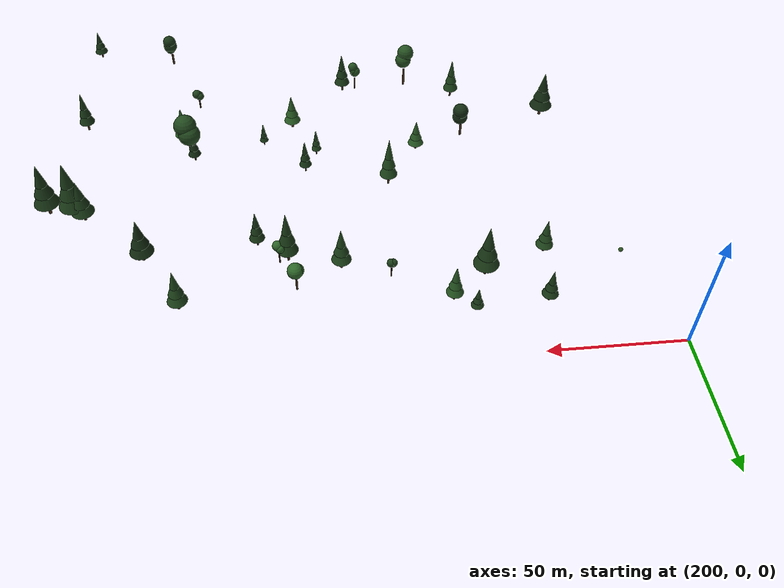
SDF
<sdf version="1.9">
 <world name="detection_world_terrain_train_ir">
  <model name="tree_7">
   <static>true</static>
   <pose>281.96 -144.49 6.29 0 0 3.37</pose>
   <link name="link">
    <visual name="trunk">
     <pose>0 0 3.98 0 0 0</pose>
     <geometry><cylinder><radius>0.44</radius><length>7.96</length></cylinder></geometry>
     <material><ambient>0.28 0.2 0.12 1</ambient><diffuse>0.28 0.2 0.12 1</diffuse></material>
    </visual>
    <visual name="canopy0">
     <pose>0.41 -0.21 16.67 0 0 0</pose>
     <geometry><sphere><radius>3.44</radius></sphere></geometry>
     <material><ambient>0.142 0.315 0.126 1</ambient><diffuse>0.142 0.315 0.126 1</diffuse></material>
    </visual>
    <visual name="canopy1">
     <pose>0.20 -0.24 13.62 0 0 0</pose>
     <geometry><sphere><radius>2.53</radius></sphere></geometry>
     <material><ambient>0.142 0.315 0.126 1</ambient><diffuse>0.142 0.315 0.126 1</diffuse></material>
    </visual>
    <visual name="canopy2">
     <pose>-0.77 -0.86 13.71 0 0 0</pose>
     <geometry><sphere><radius>3.29</radius></sphere></geometry>
     <material><ambient>0.142 0.315 0.126 1</ambient><diffuse>0.142 0.315 0.126 1</diffuse></material>
    </visual>
   </link>
  </model>
  <model name="tree_9">
   <static>true</static>
   <pose>317.36 -36.46 9.45 0 0 6.08</pose>
   <link name="link">
    <visual name="trunk">
     <pose>0 0 3.11 0 0 0</pose>
     <geometry><cylinder><radius>0.43</radius><length>6.21</length></cylinder></geometry>
     <material><ambient>0.28 0.2 0.12 1</ambient><diffuse>0.28 0.2 0.12 1</diffuse></material>
    </visual>
    <visual name="canopy0">
     <pose>0 0 7.99 0 0 0</pose>
     <geometry><cone><radius>3.57</radius><length>7.46</length></cone></geometry>
     <material><ambient>0.129 0.287 0.115 1</ambient><diffuse>0.129 0.287 0.115 1</diffuse></material>
    </visual>
    <visual name="canopy1">
     <pose>0 0 11.54 0 0 0</pose>
     <geometry><cone><radius>2.68</radius><length>7.46</length></cone></geometry>
     <material><ambient>0.129 0.287 0.115 1</ambient><diffuse>0.129 0.287 0.115 1</diffuse></material>
    </visual>
    <visual name="canopy2">
     <pose>0 0 15.09 0 0 0</pose>
     <geometry><cone><radius>1.61</radius><length>7.46</length></cone></geometry>
     <material><ambient>0.129 0.287 0.115 1</ambient><diffuse>0.129 0.287 0.115 1</diffuse></material>
    </visual>
   </link>
  </model>
  <model name="tree_10">
   <static>true</static>
   <pose>370.35 -92.12 15.42 0 0 4.68</pose>
   <link name="link">
    <visual name="trunk">
     <pose>0 0 2.21 0 0 0</pose>
     <geometry><cylinder><radius>0.29</radius><length>4.43</length></cylinder></geometry>
     <material><ambient>0.28 0.2 0.12 1</ambient><diffuse>0.28 0.2 0.12 1</diffuse></material>
    </visual>
    <visual name="canopy0">
     <pose>0 0 5.69 0 0 0</pose>
     <geometry><cone><radius>2.39</radius><length>5.31</length></cone></geometry>
     <material><ambient>0.084 0.187 0.075 1</ambient><diffuse>0.084 0.187 0.075 1</diffuse></material>
    </visual>
    <visual name="canopy1">
     <pose>0 0 8.22 0 0 0</pose>
     <geometry><cone><radius>1.79</radius><length>5.31</length></cone></geometry>
     <material><ambient>0.084 0.187 0.075 1</ambient><diffuse>0.084 0.187 0.075 1</diffuse></material>
    </visual>
    <visual name="canopy2">
     <pose>0 0 10.75 0 0 0</pose>
     <geometry><cone><radius>1.08</radius><length>5.31</length></cone></geometry>
     <material><ambient>0.084 0.187 0.075 1</ambient><diffuse>0.084 0.187 0.075 1</diffuse></material>
    </visual>
   </link>
  </model>
  <model name="tree_11">
   <static>true</static>
   <pose>333.58 -26.29 11.20 0 0 4.42</pose>
   <link name="link">
    <visual name="trunk">
     <pose>0 0 2.56 0 0 0</pose>
     <geometry><cylinder><radius>0.36</radius><length>5.11</length></cylinder></geometry>
     <material><ambient>0.28 0.2 0.12 1</ambient><diffuse>0.28 0.2 0.12 1</diffuse></material>
    </visual>
    <visual name="canopy0">
     <pose>0.10 0.20 9.37 0 0 0</pose>
     <geometry><sphere><radius>2.86</radius></sphere></geometry>
     <material><ambient>0.181 0.403 0.161 1</ambient><diffuse>0.181 0.403 0.161 1</diffuse></material>
    </visual>
    <visual name="canopy1">
     <pose>0.46 -0.36 9.33 0 0 0</pose>
     <geometry><sphere><radius>2.43</radius></sphere></geometry>
     <material><ambient>0.181 0.403 0.161 1</ambient><diffuse>0.181 0.403 0.161 1</diffuse></material>
    </visual>
    <visual name="canopy2">
     <pose>0.03 0.04 8.73 0 0 0</pose>
     <geometry><sphere><radius>2.41</radius></sphere></geometry>
     <material><ambient>0.181 0.403 0.161 1</ambient><diffuse>0.181 0.403 0.161 1</diffuse></material>
    </visual>
   </link>
  </model>
  <model name="tree_12">
   <static>true</static>
   <pose>373.00 -17.21 16.43 0 0 0.08</pose>
   <link name="link">
    <visual name="trunk">
     <pose>0 0 2.99 0 0 0</pose>
     <geometry><cylinder><radius>0.42</radius><length>5.97</length></cylinder></geometry>
     <material><ambient>0.28 0.2 0.12 1</ambient><diffuse>0.28 0.2 0.12 1</diffuse></material>
    </visual>
    <visual name="canopy0">
     <pose>0 0 7.68 0 0 0</pose>
     <geometry><cone><radius>3.46</radius><length>7.17</length></cone></geometry>
     <material><ambient>0.132 0.294 0.118 1</ambient><diffuse>0.132 0.294 0.118 1</diffuse></material>
    </visual>
    <visual name="canopy1">
     <pose>0 0 11.09 0 0 0</pose>
     <geometry><cone><radius>2.60</radius><length>7.17</length></cone></geometry>
     <material><ambient>0.132 0.294 0.118 1</ambient><diffuse>0.132 0.294 0.118 1</diffuse></material>
    </visual>
    <visual name="canopy2">
     <pose>0 0 14.50 0 0 0</pose>
     <geometry><cone><radius>1.56</radius><length>7.17</length></cone></geometry>
     <material><ambient>0.132 0.294 0.118 1</ambient><diffuse>0.132 0.294 0.118 1</diffuse></material>
    </visual>
   </link>
  </model>
  <model name="tree_14">
   <static>true</static>
   <pose>371.86 -94.50 15.38 0 0 2.13</pose>
   <link name="link">
    <visual name="trunk">
     <pose>0 0 3.83 0 0 0</pose>
     <geometry><cylinder><radius>0.59</radius><length>7.67</length></cylinder></geometry>
     <material><ambient>0.28 0.2 0.12 1</ambient><diffuse>0.28 0.2 0.12 1</diffuse></material>
    </visual>
    <visual name="canopy0">
     <pose>-1.30 0.12 13.08 0 0 0</pose>
     <geometry><sphere><radius>3.86</radius></sphere></geometry>
     <material><ambient>0.127 0.283 0.113 1</ambient><diffuse>0.127 0.283 0.113 1</diffuse></material>
    </visual>
    <visual name="canopy1">
     <pose>-0.68 -0.45 15.03 0 0 0</pose>
     <geometry><sphere><radius>4.34</radius></sphere></geometry>
     <material><ambient>0.127 0.283 0.113 1</ambient><diffuse>0.127 0.283 0.113 1</diffuse></material>
    </visual>
    <visual name="canopy2">
     <pose>1.40 -0.28 12.09 0 0 0</pose>
     <geometry><sphere><radius>4.22</radius></sphere></geometry>
     <material><ambient>0.127 0.283 0.113 1</ambient><diffuse>0.127 0.283 0.113 1</diffuse></material>
    </visual>
   </link>
  </model>
  <model name="tree_16">
   <static>true</static>
   <pose>327.68 -87.29 10.52 0 0 4.28</pose>
   <link name="link">
    <visual name="trunk">
     <pose>0 0 2.44 0 0 0</pose>
     <geometry><cylinder><radius>0.28</radius><length>4.89</length></cylinder></geometry>
     <material><ambient>0.28 0.2 0.12 1</ambient><diffuse>0.28 0.2 0.12 1</diffuse></material>
    </visual>
    <visual name="canopy0">
     <pose>0 0 6.28 0 0 0</pose>
     <geometry><cone><radius>2.37</radius><length>5.87</length></cone></geometry>
     <material><ambient>0.108 0.240 0.096 1</ambient><diffuse>0.108 0.240 0.096 1</diffuse></material>
    </visual>
    <visual name="canopy1">
     <pose>0 0 9.08 0 0 0</pose>
     <geometry><cone><radius>1.78</radius><length>5.87</length></cone></geometry>
     <material><ambient>0.108 0.240 0.096 1</ambient><diffuse>0.108 0.240 0.096 1</diffuse></material>
    </visual>
    <visual name="canopy2">
     <pose>0 0 11.87 0 0 0</pose>
     <geometry><cone><radius>1.07</radius><length>5.87</length></cone></geometry>
     <material><ambient>0.108 0.240 0.096 1</ambient><diffuse>0.108 0.240 0.096 1</diffuse></material>
    </visual>
   </link>
  </model>
  <model name="tree_17">
   <static>true</static>
   <pose>282.10 -101.90 5.74 0 0 0.95</pose>
   <link name="link">
    <visual name="trunk">
     <pose>0 0 2.27 0 0 0</pose>
     <geometry><cylinder><radius>0.37</radius><length>4.55</length></cylinder></geometry>
     <material><ambient>0.28 0.2 0.12 1</ambient><diffuse>0.28 0.2 0.12 1</diffuse></material>
    </visual>
    <visual name="canopy0">
     <pose>0 0 5.85 0 0 0</pose>
     <geometry><cone><radius>3.10</radius><length>5.46</length></cone></geometry>
     <material><ambient>0.166 0.369 0.148 1</ambient><diffuse>0.166 0.369 0.148 1</diffuse></material>
    </visual>
    <visual name="canopy1">
     <pose>0 0 8.44 0 0 0</pose>
     <geometry><cone><radius>2.33</radius><length>5.46</length></cone></geometry>
     <material><ambient>0.166 0.369 0.148 1</ambient><diffuse>0.166 0.369 0.148 1</diffuse></material>
    </visual>
    <visual name="canopy2">
     <pose>0 0 11.04 0 0 0</pose>
     <geometry><cone><radius>1.40</radius><length>5.46</length></cone></geometry>
     <material><ambient>0.166 0.369 0.148 1</ambient><diffuse>0.166 0.369 0.148 1</diffuse></material>
    </visual>
   </link>
  </model>
  <model name="tree_18">
   <static>true</static>
   <pose>278.76 -21.80 5.20 0 0 0.97</pose>
   <link name="link">
    <visual name="trunk">
     <pose>0 0 2.70 0 0 0</pose>
     <geometry><cylinder><radius>0.37</radius><length>5.40</length></cylinder></geometry>
     <material><ambient>0.28 0.2 0.12 1</ambient><diffuse>0.28 0.2 0.12 1</diffuse></material>
    </visual>
    <visual name="canopy0">
     <pose>0 0 6.95 0 0 0</pose>
     <geometry><cone><radius>3.12</radius><length>6.48</length></cone></geometry>
     <material><ambient>0.163 0.362 0.145 1</ambient><diffuse>0.163 0.362 0.145 1</diffuse></material>
    </visual>
    <visual name="canopy1">
     <pose>0 0 10.03 0 0 0</pose>
     <geometry><cone><radius>2.34</radius><length>6.48</length></cone></geometry>
     <material><ambient>0.163 0.362 0.145 1</ambient><diffuse>0.163 0.362 0.145 1</diffuse></material>
    </visual>
    <visual name="canopy2">
     <pose>0 0 13.12 0 0 0</pose>
     <geometry><cone><radius>1.40</radius><length>6.48</length></cone></geometry>
     <material><ambient>0.163 0.362 0.145 1</ambient><diffuse>0.163 0.362 0.145 1</diffuse></material>
    </visual>
   </link>
  </model>
  <model name="tree_19">
   <static>true</static>
   <pose>331.84 -114.08 10.98 0 0 6.01</pose>
   <link name="link">
    <visual name="trunk">
     <pose>0 0 2.53 0 0 0</pose>
     <geometry><cylinder><radius>0.39</radius><length>5.05</length></cylinder></geometry>
     <material><ambient>0.28 0.2 0.12 1</ambient><diffuse>0.28 0.2 0.12 1</diffuse></material>
    </visual>
    <visual name="canopy0">
     <pose>0 0 6.50 0 0 0</pose>
     <geometry><cone><radius>3.24</radius><length>6.06</length></cone></geometry>
     <material><ambient>0.176 0.391 0.157 1</ambient><diffuse>0.176 0.391 0.157 1</diffuse></material>
    </visual>
    <visual name="canopy1">
     <pose>0 0 9.39 0 0 0</pose>
     <geometry><cone><radius>2.43</radius><length>6.06</length></cone></geometry>
     <material><ambient>0.176 0.391 0.157 1</ambient><diffuse>0.176 0.391 0.157 1</diffuse></material>
    </visual>
    <visual name="canopy2">
     <pose>0 0 12.27 0 0 0</pose>
     <geometry><cone><radius>1.46</radius><length>6.06</length></cone></geometry>
     <material><ambient>0.176 0.391 0.157 1</ambient><diffuse>0.176 0.391 0.157 1</diffuse></material>
    </visual>
   </link>
  </model>
  <model name="tree_28">
   <static>true</static>
   <pose>265.55 -33.37 4.22 0 0 5.97</pose>
   <link name="link">
    <visual name="trunk">
     <pose>0 0 3.84 0 0 0</pose>
     <geometry><cylinder><radius>0.57</radius><length>7.67</length></cylinder></geometry>
     <material><ambient>0.28 0.2 0.12 1</ambient><diffuse>0.28 0.2 0.12 1</diffuse></material>
    </visual>
    <visual name="canopy0">
     <pose>0 0 9.87 0 0 0</pose>
     <geometry><cone><radius>4.72</radius><length>9.21</length></cone></geometry>
     <material><ambient>0.107 0.237 0.095 1</ambient><diffuse>0.107 0.237 0.095 1</diffuse></material>
    </visual>
    <visual name="canopy1">
     <pose>0 0 14.25 0 0 0</pose>
     <geometry><cone><radius>3.54</radius><length>9.21</length></cone></geometry>
     <material><ambient>0.107 0.237 0.095 1</ambient><diffuse>0.107 0.237 0.095 1</diffuse></material>
    </visual>
    <visual name="canopy2">
     <pose>0 0 18.64 0 0 0</pose>
     <geometry><cone><radius>2.13</radius><length>9.21</length></cone></geometry>
     <material><ambient>0.107 0.237 0.095 1</ambient><diffuse>0.107 0.237 0.095 1</diffuse></material>
    </visual>
   </link>
  </model>
  <model name="tree_30">
   <static>true</static>
   <pose>411.90 -107.45 21.19 0 0 0.23</pose>
   <link name="link">
    <visual name="trunk">
     <pose>0 0 2.91 0 0 0</pose>
     <geometry><cylinder><radius>0.35</radius><length>5.81</length></cylinder></geometry>
     <material><ambient>0.28 0.2 0.12 1</ambient><diffuse>0.28 0.2 0.12 1</diffuse></material>
    </visual>
    <visual name="canopy0">
     <pose>0 0 7.47 0 0 0</pose>
     <geometry><cone><radius>2.92</radius><length>6.98</length></cone></geometry>
     <material><ambient>0.109 0.242 0.097 1</ambient><diffuse>0.109 0.242 0.097 1</diffuse></material>
    </visual>
    <visual name="canopy1">
     <pose>0 0 10.80 0 0 0</pose>
     <geometry><cone><radius>2.19</radius><length>6.98</length></cone></geometry>
     <material><ambient>0.109 0.242 0.097 1</ambient><diffuse>0.109 0.242 0.097 1</diffuse></material>
    </visual>
    <visual name="canopy2">
     <pose>0 0 14.12 0 0 0</pose>
     <geometry><cone><radius>1.31</radius><length>6.98</length></cone></geometry>
     <material><ambient>0.109 0.242 0.097 1</ambient><diffuse>0.109 0.242 0.097 1</diffuse></material>
    </visual>
   </link>
  </model>
  <model name="tree_31">
   <static>true</static>
   <pose>244.88 -20.02 3.01 0 0 1.96</pose>
   <link name="link">
    <visual name="trunk">
     <pose>0 0 2.48 0 0 0</pose>
     <geometry><cylinder><radius>0.35</radius><length>4.95</length></cylinder></geometry>
     <material><ambient>0.28 0.2 0.12 1</ambient><diffuse>0.28 0.2 0.12 1</diffuse></material>
    </visual>
    <visual name="canopy0">
     <pose>0 0 6.37 0 0 0</pose>
     <geometry><cone><radius>2.96</radius><length>5.94</length></cone></geometry>
     <material><ambient>0.109 0.242 0.097 1</ambient><diffuse>0.109 0.242 0.097 1</diffuse></material>
    </visual>
    <visual name="canopy1">
     <pose>0 0 9.20 0 0 0</pose>
     <geometry><cone><radius>2.22</radius><length>5.94</length></cone></geometry>
     <material><ambient>0.109 0.242 0.097 1</ambient><diffuse>0.109 0.242 0.097 1</diffuse></material>
    </visual>
    <visual name="canopy2">
     <pose>0 0 12.03 0 0 0</pose>
     <geometry><cone><radius>1.33</radius><length>5.94</length></cone></geometry>
     <material><ambient>0.109 0.242 0.097 1</ambient><diffuse>0.109 0.242 0.097 1</diffuse></material>
    </visual>
   </link>
  </model>
  <model name="tree_32">
   <static>true</static>
   <pose>295.68 -80.49 7.30 0 0 3.36</pose>
   <link name="link">
    <visual name="trunk">
     <pose>0 0 3.65 0 0 0</pose>
     <geometry><cylinder><radius>0.41</radius><length>7.31</length></cylinder></geometry>
     <material><ambient>0.28 0.2 0.12 1</ambient><diffuse>0.28 0.2 0.12 1</diffuse></material>
    </visual>
    <visual name="canopy0">
     <pose>0 0 9.39 0 0 0</pose>
     <geometry><cone><radius>3.39</radius><length>8.77</length></cone></geometry>
     <material><ambient>0.139 0.309 0.124 1</ambient><diffuse>0.139 0.309 0.124 1</diffuse></material>
    </visual>
    <visual name="canopy1">
     <pose>0 0 13.57 0 0 0</pose>
     <geometry><cone><radius>2.54</radius><length>8.77</length></cone></geometry>
     <material><ambient>0.139 0.309 0.124 1</ambient><diffuse>0.139 0.309 0.124 1</diffuse></material>
    </visual>
    <visual name="canopy2">
     <pose>0 0 17.74 0 0 0</pose>
     <geometry><cone><radius>1.53</radius><length>8.77</length></cone></geometry>
     <material><ambient>0.139 0.309 0.124 1</ambient><diffuse>0.139 0.309 0.124 1</diffuse></material>
    </visual>
   </link>
  </model>
  <model name="tree_34">
   <static>true</static>
   <pose>241.52 -43.54 2.79 0 0 6.15</pose>
   <link name="link">
    <visual name="trunk">
     <pose>0 0 2.56 0 0 0</pose>
     <geometry><cylinder><radius>0.39</radius><length>5.11</length></cylinder></geometry>
     <material><ambient>0.28 0.2 0.12 1</ambient><diffuse>0.28 0.2 0.12 1</diffuse></material>
    </visual>
    <visual name="canopy0">
     <pose>0 0 6.57 0 0 0</pose>
     <geometry><cone><radius>3.22</radius><length>6.14</length></cone></geometry>
     <material><ambient>0.134 0.298 0.119 1</ambient><diffuse>0.134 0.298 0.119 1</diffuse></material>
    </visual>
    <visual name="canopy1">
     <pose>0 0 9.50 0 0 0</pose>
     <geometry><cone><radius>2.42</radius><length>6.14</length></cone></geometry>
     <material><ambient>0.134 0.298 0.119 1</ambient><diffuse>0.134 0.298 0.119 1</diffuse></material>
    </visual>
    <visual name="canopy2">
     <pose>0 0 12.42 0 0 0</pose>
     <geometry><cone><radius>1.45</radius><length>6.14</length></cone></geometry>
     <material><ambient>0.134 0.298 0.119 1</ambient><diffuse>0.134 0.298 0.119 1</diffuse></material>
    </visual>
   </link>
  </model>
  <model name="tree_36">
   <static>true</static>
   <pose>411.76 -156.10 21.31 0 0 1.24</pose>
   <link name="link">
    <visual name="trunk">
     <pose>0 0 2.02 0 0 0</pose>
     <geometry><cylinder><radius>0.30</radius><length>4.04</length></cylinder></geometry>
     <material><ambient>0.28 0.2 0.12 1</ambient><diffuse>0.28 0.2 0.12 1</diffuse></material>
    </visual>
    <visual name="canopy0">
     <pose>0 0 5.19 0 0 0</pose>
     <geometry><cone><radius>2.53</radius><length>4.84</length></cone></geometry>
     <material><ambient>0.097 0.214 0.086 1</ambient><diffuse>0.097 0.214 0.086 1</diffuse></material>
    </visual>
    <visual name="canopy1">
     <pose>0 0 7.50 0 0 0</pose>
     <geometry><cone><radius>1.90</radius><length>4.84</length></cone></geometry>
     <material><ambient>0.097 0.214 0.086 1</ambient><diffuse>0.097 0.214 0.086 1</diffuse></material>
    </visual>
    <visual name="canopy2">
     <pose>0 0 9.80 0 0 0</pose>
     <geometry><cone><radius>1.14</radius><length>4.84</length></cone></geometry>
     <material><ambient>0.097 0.214 0.086 1</ambient><diffuse>0.097 0.214 0.086 1</diffuse></material>
    </visual>
   </link>
  </model>
  <model name="tree_37">
   <static>true</static>
   <pose>381.76 -153.99 17.22 0 0 2.03</pose>
   <link name="link">
    <visual name="trunk">
     <pose>0 0 2.41 0 0 0</pose>
     <geometry><cylinder><radius>0.40</radius><length>4.81</length></cylinder></geometry>
     <material><ambient>0.28 0.2 0.12 1</ambient><diffuse>0.28 0.2 0.12 1</diffuse></material>
    </visual>
    <visual name="canopy0">
     <pose>-0.80 -0.05 8.63 0 0 0</pose>
     <geometry><sphere><radius>2.72</radius></sphere></geometry>
     <material><ambient>0.092 0.205 0.082 1</ambient><diffuse>0.092 0.205 0.082 1</diffuse></material>
    </visual>
    <visual name="canopy1">
     <pose>-0.39 -0.33 7.62 0 0 0</pose>
     <geometry><sphere><radius>2.08</radius></sphere></geometry>
     <material><ambient>0.092 0.205 0.082 1</ambient><diffuse>0.092 0.205 0.082 1</diffuse></material>
    </visual>
    <visual name="canopy2">
     <pose>-0.98 -0.08 10.58 0 0 0</pose>
     <geometry><sphere><radius>2.60</radius></sphere></geometry>
     <material><ambient>0.092 0.205 0.082 1</ambient><diffuse>0.092 0.205 0.082 1</diffuse></material>
    </visual>
   </link>
  </model>
  <model name="tree_39">
   <static>true</static>
   <pose>303.89 -140.99 8.26 0 0 4.96</pose>
   <link name="link">
    <visual name="trunk">
     <pose>0 0 2.68 0 0 0</pose>
     <geometry><cylinder><radius>0.30</radius><length>5.37</length></cylinder></geometry>
     <material><ambient>0.28 0.2 0.12 1</ambient><diffuse>0.28 0.2 0.12 1</diffuse></material>
    </visual>
    <visual name="canopy0">
     <pose>-0.13 0.40 9.44 0 0 0</pose>
     <geometry><sphere><radius>1.72</radius></sphere></geometry>
     <material><ambient>0.137 0.304 0.121 1</ambient><diffuse>0.137 0.304 0.121 1</diffuse></material>
    </visual>
    <visual name="canopy1">
     <pose>0.00 -0.14 8.93 0 0 0</pose>
     <geometry><sphere><radius>2.16</radius></sphere></geometry>
     <material><ambient>0.137 0.304 0.121 1</ambient><diffuse>0.137 0.304 0.121 1</diffuse></material>
    </visual>
    <visual name="canopy2">
     <pose>0.55 0.50 10.96 0 0 0</pose>
     <geometry><sphere><radius>1.93</radius></sphere></geometry>
     <material><ambient>0.137 0.304 0.121 1</ambient><diffuse>0.137 0.304 0.121 1</diffuse></material>
    </visual>
   </link>
  </model>
  <model name="tree_40">
   <static>true</static>
   <pose>262.20 -136.35 4.75 0 0 5.10</pose>
   <link name="link">
    <visual name="trunk">
     <pose>0 0 3.05 0 0 0</pose>
     <geometry><cylinder><radius>0.37</radius><length>6.10</length></cylinder></geometry>
     <material><ambient>0.28 0.2 0.12 1</ambient><diffuse>0.28 0.2 0.12 1</diffuse></material>
    </visual>
    <visual name="canopy0">
     <pose>0 0 7.84 0 0 0</pose>
     <geometry><cone><radius>3.08</radius><length>7.32</length></cone></geometry>
     <material><ambient>0.128 0.285 0.114 1</ambient><diffuse>0.128 0.285 0.114 1</diffuse></material>
    </visual>
    <visual name="canopy1">
     <pose>0 0 11.33 0 0 0</pose>
     <geometry><cone><radius>2.31</radius><length>7.32</length></cone></geometry>
     <material><ambient>0.128 0.285 0.114 1</ambient><diffuse>0.128 0.285 0.114 1</diffuse></material>
    </visual>
    <visual name="canopy2">
     <pose>0 0 14.81 0 0 0</pose>
     <geometry><cone><radius>1.39</radius><length>7.32</length></cone></geometry>
     <material><ambient>0.128 0.285 0.114 1</ambient><diffuse>0.128 0.285 0.114 1</diffuse></material>
    </visual>
   </link>
  </model>
  <model name="tree_41">
   <static>true</static>
   <pose>343.53 -102.35 12.22 0 0 4.47</pose>
   <link name="link">
    <visual name="trunk">
     <pose>0 0 1.76 0 0 0</pose>
     <geometry><cylinder><radius>0.20</radius><length>3.53</length></cylinder></geometry>
     <material><ambient>0.28 0.2 0.12 1</ambient><diffuse>0.28 0.2 0.12 1</diffuse></material>
    </visual>
    <visual name="canopy0">
     <pose>0 0 4.54 0 0 0</pose>
     <geometry><cone><radius>1.65</radius><length>4.23</length></cone></geometry>
     <material><ambient>0.109 0.243 0.097 1</ambient><diffuse>0.109 0.243 0.097 1</diffuse></material>
    </visual>
    <visual name="canopy1">
     <pose>0 0 6.55 0 0 0</pose>
     <geometry><cone><radius>1.24</radius><length>4.23</length></cone></geometry>
     <material><ambient>0.109 0.243 0.097 1</ambient><diffuse>0.109 0.243 0.097 1</diffuse></material>
    </visual>
    <visual name="canopy2">
     <pose>0 0 8.57 0 0 0</pose>
     <geometry><cone><radius>0.74</radius><length>4.23</length></cone></geometry>
     <material><ambient>0.109 0.243 0.097 1</ambient><diffuse>0.109 0.243 0.097 1</diffuse></material>
    </visual>
   </link>
  </model>
  <model name="tree_42">
   <static>true</static>
   <pose>385.89 -38.65 18.24 0 0 3.95</pose>
   <link name="link">
    <visual name="trunk">
     <pose>0 0 3.12 0 0 0</pose>
     <geometry><cylinder><radius>0.50</radius><length>6.24</length></cylinder></geometry>
     <material><ambient>0.28 0.2 0.12 1</ambient><diffuse>0.28 0.2 0.12 1</diffuse></material>
    </visual>
    <visual name="canopy0">
     <pose>0 0 8.03 0 0 0</pose>
     <geometry><cone><radius>4.21</radius><length>7.49</length></cone></geometry>
     <material><ambient>0.083 0.184 0.073 1</ambient><diffuse>0.083 0.184 0.073 1</diffuse></material>
    </visual>
    <visual name="canopy1">
     <pose>0 0 11.59 0 0 0</pose>
     <geometry><cone><radius>3.16</radius><length>7.49</length></cone></geometry>
     <material><ambient>0.083 0.184 0.073 1</ambient><diffuse>0.083 0.184 0.073 1</diffuse></material>
    </visual>
    <visual name="canopy2">
     <pose>0 0 15.16 0 0 0</pose>
     <geometry><cone><radius>1.89</radius><length>7.49</length></cone></geometry>
     <material><ambient>0.083 0.184 0.073 1</ambient><diffuse>0.083 0.184 0.073 1</diffuse></material>
    </visual>
   </link>
  </model>
  <model name="tree_43">
   <static>true</static>
   <pose>419.62 -59.90 23.00 0 0 4.94</pose>
   <link name="link">
    <visual name="trunk">
     <pose>0 0 3.74 0 0 0</pose>
     <geometry><cylinder><radius>0.55</radius><length>7.47</length></cylinder></geometry>
     <material><ambient>0.28 0.2 0.12 1</ambient><diffuse>0.28 0.2 0.12 1</diffuse></material>
    </visual>
    <visual name="canopy0">
     <pose>0 0 9.61 0 0 0</pose>
     <geometry><cone><radius>4.55</radius><length>8.97</length></cone></geometry>
     <material><ambient>0.100 0.221 0.089 1</ambient><diffuse>0.100 0.221 0.089 1</diffuse></material>
    </visual>
    <visual name="canopy1">
     <pose>0 0 13.88 0 0 0</pose>
     <geometry><cone><radius>3.42</radius><length>8.97</length></cone></geometry>
     <material><ambient>0.100 0.221 0.089 1</ambient><diffuse>0.100 0.221 0.089 1</diffuse></material>
    </visual>
    <visual name="canopy2">
     <pose>0 0 18.15 0 0 0</pose>
     <geometry><cone><radius>2.05</radius><length>8.97</length></cone></geometry>
     <material><ambient>0.100 0.221 0.089 1</ambient><diffuse>0.100 0.221 0.089 1</diffuse></material>
    </visual>
   </link>
  </model>
  <model name="tree_45">
   <static>true</static>
   <pose>224.77 -123.22 2.44 0 0 0.05</pose>
   <link name="link">
    <visual name="trunk">
     <pose>0 0 3.51 0 0 0</pose>
     <geometry><cylinder><radius>0.56</radius><length>7.02</length></cylinder></geometry>
     <material><ambient>0.28 0.2 0.12 1</ambient><diffuse>0.28 0.2 0.12 1</diffuse></material>
    </visual>
    <visual name="canopy0">
     <pose>0 0 9.03 0 0 0</pose>
     <geometry><cone><radius>4.68</radius><length>8.43</length></cone></geometry>
     <material><ambient>0.082 0.182 0.073 1</ambient><diffuse>0.082 0.182 0.073 1</diffuse></material>
    </visual>
    <visual name="canopy1">
     <pose>0 0 13.04 0 0 0</pose>
     <geometry><cone><radius>3.51</radius><length>8.43</length></cone></geometry>
     <material><ambient>0.082 0.182 0.073 1</ambient><diffuse>0.082 0.182 0.073 1</diffuse></material>
    </visual>
    <visual name="canopy2">
     <pose>0 0 17.05 0 0 0</pose>
     <geometry><cone><radius>2.11</radius><length>8.43</length></cone></geometry>
     <material><ambient>0.082 0.182 0.073 1</ambient><diffuse>0.082 0.182 0.073 1</diffuse></material>
    </visual>
   </link>
  </model>
  <model name="tree_47">
   <static>true</static>
   <pose>410.52 -58.78 21.58 0 0 4.58</pose>
   <link name="link">
    <visual name="trunk">
     <pose>0 0 4.11 0 0 0</pose>
     <geometry><cylinder><radius>0.61</radius><length>8.21</length></cylinder></geometry>
     <material><ambient>0.28 0.2 0.12 1</ambient><diffuse>0.28 0.2 0.12 1</diffuse></material>
    </visual>
    <visual name="canopy0">
     <pose>0 0 10.56 0 0 0</pose>
     <geometry><cone><radius>5.07</radius><length>9.86</length></cone></geometry>
     <material><ambient>0.109 0.243 0.097 1</ambient><diffuse>0.109 0.243 0.097 1</diffuse></material>
    </visual>
    <visual name="canopy1">
     <pose>0 0 15.26 0 0 0</pose>
     <geometry><cone><radius>3.80</radius><length>9.86</length></cone></geometry>
     <material><ambient>0.109 0.243 0.097 1</ambient><diffuse>0.109 0.243 0.097 1</diffuse></material>
    </visual>
    <visual name="canopy2">
     <pose>0 0 19.95 0 0 0</pose>
     <geometry><cone><radius>2.28</radius><length>9.86</length></cone></geometry>
     <material><ambient>0.109 0.243 0.097 1</ambient><diffuse>0.109 0.243 0.097 1</diffuse></material>
    </visual>
   </link>
  </model>
  <model name="tree_48">
   <static>true</static>
   <pose>309.45 -139.53 8.89 0 0 4.54</pose>
   <link name="link">
    <visual name="trunk">
     <pose>0 0 2.97 0 0 0</pose>
     <geometry><cylinder><radius>0.38</radius><length>5.94</length></cylinder></geometry>
     <material><ambient>0.28 0.2 0.12 1</ambient><diffuse>0.28 0.2 0.12 1</diffuse></material>
    </visual>
    <visual name="canopy0">
     <pose>0 0 7.64 0 0 0</pose>
     <geometry><cone><radius>3.14</radius><length>7.13</length></cone></geometry>
     <material><ambient>0.109 0.242 0.097 1</ambient><diffuse>0.109 0.242 0.097 1</diffuse></material>
    </visual>
    <visual name="canopy1">
     <pose>0 0 11.03 0 0 0</pose>
     <geometry><cone><radius>2.35</radius><length>7.13</length></cone></geometry>
     <material><ambient>0.109 0.242 0.097 1</ambient><diffuse>0.109 0.242 0.097 1</diffuse></material>
    </visual>
    <visual name="canopy2">
     <pose>0 0 14.43 0 0 0</pose>
     <geometry><cone><radius>1.41</radius><length>7.13</length></cone></geometry>
     <material><ambient>0.109 0.242 0.097 1</ambient><diffuse>0.109 0.242 0.097 1</diffuse></material>
    </visual>
   </link>
  </model>
  <model name="tree_49">
   <static>true</static>
   <pose>271.55 -16.67 4.78 0 0 1.02</pose>
   <link name="link">
    <visual name="trunk">
     <pose>0 0 1.77 0 0 0</pose>
     <geometry><cylinder><radius>0.27</radius><length>3.54</length></cylinder></geometry>
     <material><ambient>0.28 0.2 0.12 1</ambient><diffuse>0.28 0.2 0.12 1</diffuse></material>
    </visual>
    <visual name="canopy0">
     <pose>0 0 4.55 0 0 0</pose>
     <geometry><cone><radius>2.27</radius><length>4.25</length></cone></geometry>
     <material><ambient>0.110 0.244 0.098 1</ambient><diffuse>0.110 0.244 0.098 1</diffuse></material>
    </visual>
    <visual name="canopy1">
     <pose>0 0 6.57 0 0 0</pose>
     <geometry><cone><radius>1.70</radius><length>4.25</length></cone></geometry>
     <material><ambient>0.110 0.244 0.098 1</ambient><diffuse>0.110 0.244 0.098 1</diffuse></material>
    </visual>
    <visual name="canopy2">
     <pose>0 0 8.59 0 0 0</pose>
     <geometry><cone><radius>1.02</radius><length>4.25</length></cone></geometry>
     <material><ambient>0.110 0.244 0.098 1</ambient><diffuse>0.110 0.244 0.098 1</diffuse></material>
    </visual>
   </link>
  </model>
  <model name="tree_50">
   <static>true</static>
   <pose>322.90 -97.52 9.82 0 0 2.05</pose>
   <link name="link">
    <visual name="trunk">
     <pose>0 0 2.03 0 0 0</pose>
     <geometry><cylinder><radius>0.23</radius><length>4.06</length></cylinder></geometry>
     <material><ambient>0.28 0.2 0.12 1</ambient><diffuse>0.28 0.2 0.12 1</diffuse></material>
    </visual>
    <visual name="canopy0">
     <pose>0 0 5.22 0 0 0</pose>
     <geometry><cone><radius>1.89</radius><length>4.87</length></cone></geometry>
     <material><ambient>0.119 0.265 0.106 1</ambient><diffuse>0.119 0.265 0.106 1</diffuse></material>
    </visual>
    <visual name="canopy1">
     <pose>0 0 7.53 0 0 0</pose>
     <geometry><cone><radius>1.42</radius><length>4.87</length></cone></geometry>
     <material><ambient>0.119 0.265 0.106 1</ambient><diffuse>0.119 0.265 0.106 1</diffuse></material>
    </visual>
    <visual name="canopy2">
     <pose>0 0 9.85 0 0 0</pose>
     <geometry><cone><radius>0.85</radius><length>4.87</length></cone></geometry>
     <material><ambient>0.119 0.265 0.106 1</ambient><diffuse>0.119 0.265 0.106 1</diffuse></material>
    </visual>
   </link>
  </model>
  <model name="tree_51">
   <static>true</static>
   <pose>261.96 -110.51 4.35 0 0 1.78</pose>
   <link name="link">
    <visual name="trunk">
     <pose>0 0 3.16 0 0 0</pose>
     <geometry><cylinder><radius>0.45</radius><length>6.32</length></cylinder></geometry>
     <material><ambient>0.28 0.2 0.12 1</ambient><diffuse>0.28 0.2 0.12 1</diffuse></material>
    </visual>
    <visual name="canopy0">
     <pose>0.96 -1.06 13.38 0 0 0</pose>
     <geometry><sphere><radius>3.12</radius></sphere></geometry>
     <material><ambient>0.082 0.182 0.073 1</ambient><diffuse>0.082 0.182 0.073 1</diffuse></material>
    </visual>
    <visual name="canopy1">
     <pose>-0.20 -0.37 12.38 0 0 0</pose>
     <geometry><sphere><radius>3.03</radius></sphere></geometry>
     <material><ambient>0.082 0.182 0.073 1</ambient><diffuse>0.082 0.182 0.073 1</diffuse></material>
    </visual>
    <visual name="canopy2">
     <pose>0.77 -1.00 10.34 0 0 0</pose>
     <geometry><sphere><radius>3.08</radius></sphere></geometry>
     <material><ambient>0.082 0.182 0.073 1</ambient><diffuse>0.082 0.182 0.073 1</diffuse></material>
    </visual>
   </link>
  </model>
  <model name="tree_52">
   <static>true</static>
   <pose>336.01 -39.85 11.65 0 0 4.67</pose>
   <link name="link">
    <visual name="trunk">
     <pose>0 0 3.77 0 0 0</pose>
     <geometry><cylinder><radius>0.45</radius><length>7.54</length></cylinder></geometry>
     <material><ambient>0.28 0.2 0.12 1</ambient><diffuse>0.28 0.2 0.12 1</diffuse></material>
    </visual>
    <visual name="canopy0">
     <pose>0 0 9.69 0 0 0</pose>
     <geometry><cone><radius>3.77</radius><length>9.04</length></cone></geometry>
     <material><ambient>0.117 0.260 0.104 1</ambient><diffuse>0.117 0.260 0.104 1</diffuse></material>
    </visual>
    <visual name="canopy1">
     <pose>0 0 14.00 0 0 0</pose>
     <geometry><cone><radius>2.83</radius><length>9.04</length></cone></geometry>
     <material><ambient>0.117 0.260 0.104 1</ambient><diffuse>0.117 0.260 0.104 1</diffuse></material>
    </visual>
    <visual name="canopy2">
     <pose>0 0 18.30 0 0 0</pose>
     <geometry><cone><radius>1.70</radius><length>9.04</length></cone></geometry>
     <material><ambient>0.117 0.260 0.104 1</ambient><diffuse>0.117 0.260 0.104 1</diffuse></material>
    </visual>
   </link>
  </model>
  <model name="tree_54">
   <static>true</static>
   <pose>369.52 -124.71 15.27 0 0 5.31</pose>
   <link name="link">
    <visual name="trunk">
     <pose>0 0 1.84 0 0 0</pose>
     <geometry><cylinder><radius>0.28</radius><length>3.68</length></cylinder></geometry>
     <material><ambient>0.28 0.2 0.12 1</ambient><diffuse>0.28 0.2 0.12 1</diffuse></material>
    </visual>
    <visual name="canopy0">
     <pose>-0.55 -0.19 6.09 0 0 0</pose>
     <geometry><sphere><radius>1.55</radius></sphere></geometry>
     <material><ambient>0.114 0.253 0.101 1</ambient><diffuse>0.114 0.253 0.101 1</diffuse></material>
    </visual>
    <visual name="canopy1">
     <pose>0.64 0.43 6.76 0 0 0</pose>
     <geometry><sphere><radius>1.78</radius></sphere></geometry>
     <material><ambient>0.114 0.253 0.101 1</ambient><diffuse>0.114 0.253 0.101 1</diffuse></material>
    </visual>
    <visual name="canopy2">
     <pose>0.14 -0.25 6.14 0 0 0</pose>
     <geometry><sphere><radius>1.73</radius></sphere></geometry>
     <material><ambient>0.114 0.253 0.101 1</ambient><diffuse>0.114 0.253 0.101 1</diffuse></material>
    </visual>
   </link>
  </model>
  <model name="tree_58">
   <static>true</static>
   <pose>346.79 -47.02 12.74 0 0 1.55</pose>
   <link name="link">
    <visual name="trunk">
     <pose>0 0 2.64 0 0 0</pose>
     <geometry><cylinder><radius>0.33</radius><length>5.29</length></cylinder></geometry>
     <material><ambient>0.28 0.2 0.12 1</ambient><diffuse>0.28 0.2 0.12 1</diffuse></material>
    </visual>
    <visual name="canopy0">
     <pose>0 0 6.80 0 0 0</pose>
     <geometry><cone><radius>2.78</radius><length>6.35</length></cone></geometry>
     <material><ambient>0.106 0.235 0.094 1</ambient><diffuse>0.106 0.235 0.094 1</diffuse></material>
    </visual>
    <visual name="canopy1">
     <pose>0 0 9.82 0 0 0</pose>
     <geometry><cone><radius>2.09</radius><length>6.35</length></cone></geometry>
     <material><ambient>0.106 0.235 0.094 1</ambient><diffuse>0.106 0.235 0.094 1</diffuse></material>
    </visual>
    <visual name="canopy2">
     <pose>0 0 12.84 0 0 0</pose>
     <geometry><cone><radius>1.25</radius><length>6.35</length></cone></geometry>
     <material><ambient>0.106 0.235 0.094 1</ambient><diffuse>0.106 0.235 0.094 1</diffuse></material>
    </visual>
   </link>
  </model>
  <model name="tree_64">
   <static>true</static>
   <pose>339.11 -38.54 12.01 0 0 5.92</pose>
   <link name="link">
    <visual name="trunk">
     <pose>0 0 2.04 0 0 0</pose>
     <geometry><cylinder><radius>0.25</radius><length>4.08</length></cylinder></geometry>
     <material><ambient>0.28 0.2 0.12 1</ambient><diffuse>0.28 0.2 0.12 1</diffuse></material>
    </visual>
    <visual name="canopy0">
     <pose>-0.36 -0.31 6.82 0 0 0</pose>
     <geometry><sphere><radius>1.67</radius></sphere></geometry>
     <material><ambient>0.174 0.387 0.155 1</ambient><diffuse>0.174 0.387 0.155 1</diffuse></material>
    </visual>
    <visual name="canopy1">
     <pose>0.54 -0.45 7.92 0 0 0</pose>
     <geometry><sphere><radius>1.93</radius></sphere></geometry>
     <material><ambient>0.174 0.387 0.155 1</ambient><diffuse>0.174 0.387 0.155 1</diffuse></material>
    </visual>
    <visual name="canopy2">
     <pose>-0.52 -0.02 7.29 0 0 0</pose>
     <geometry><sphere><radius>1.68</radius></sphere></geometry>
     <material><ambient>0.174 0.387 0.155 1</ambient><diffuse>0.174 0.387 0.155 1</diffuse></material>
    </visual>
   </link>
  </model>
  <model name="tree_65">
   <static>true</static>
   <pose>407.38 -57.10 21.22 0 0 1.71</pose>
   <link name="link">
    <visual name="trunk">
     <pose>0 0 3.01 0 0 0</pose>
     <geometry><cylinder><radius>0.49</radius><length>6.02</length></cylinder></geometry>
     <material><ambient>0.28 0.2 0.12 1</ambient><diffuse>0.28 0.2 0.12 1</diffuse></material>
    </visual>
    <visual name="canopy0">
     <pose>0 0 7.73 0 0 0</pose>
     <geometry><cone><radius>4.05</radius><length>7.22</length></cone></geometry>
     <material><ambient>0.107 0.238 0.095 1</ambient><diffuse>0.107 0.238 0.095 1</diffuse></material>
    </visual>
    <visual name="canopy1">
     <pose>0 0 11.17 0 0 0</pose>
     <geometry><cone><radius>3.03</radius><length>7.22</length></cone></geometry>
     <material><ambient>0.107 0.238 0.095 1</ambient><diffuse>0.107 0.238 0.095 1</diffuse></material>
    </visual>
    <visual name="canopy2">
     <pose>0 0 14.61 0 0 0</pose>
     <geometry><cone><radius>1.82</radius><length>7.22</length></cone></geometry>
     <material><ambient>0.107 0.238 0.095 1</ambient><diffuse>0.107 0.238 0.095 1</diffuse></material>
    </visual>
   </link>
  </model>
  <model name="tree_67">
   <static>true</static>
   <pose>374.88 -103.66 15.68 0 0 2.92</pose>
   <link name="link">
    <visual name="trunk">
     <pose>0 0 2.63 0 0 0</pose>
     <geometry><cylinder><radius>0.42</radius><length>5.25</length></cylinder></geometry>
     <material><ambient>0.28 0.2 0.12 1</ambient><diffuse>0.28 0.2 0.12 1</diffuse></material>
    </visual>
    <visual name="canopy0">
     <pose>0 0 6.75 0 0 0</pose>
     <geometry><cone><radius>3.46</radius><length>6.30</length></cone></geometry>
     <material><ambient>0.186 0.414 0.166 1</ambient><diffuse>0.186 0.414 0.166 1</diffuse></material>
    </visual>
    <visual name="canopy1">
     <pose>0 0 9.75 0 0 0</pose>
     <geometry><cone><radius>2.60</radius><length>6.30</length></cone></geometry>
     <material><ambient>0.186 0.414 0.166 1</ambient><diffuse>0.186 0.414 0.166 1</diffuse></material>
    </visual>
    <visual name="canopy2">
     <pose>0 0 12.76 0 0 0</pose>
     <geometry><cone><radius>1.56</radius><length>6.30</length></cone></geometry>
     <material><ambient>0.186 0.414 0.166 1</ambient><diffuse>0.186 0.414 0.166 1</diffuse></material>
    </visual>
   </link>
  </model>
  <model name="tree_68">
   <static>true</static>
   <pose>299.90 -32.41 7.30 0 0 1.97</pose>
   <link name="link">
    <visual name="trunk">
     <pose>0 0 2.14 0 0 0</pose>
     <geometry><cylinder><radius>0.24</radius><length>4.29</length></cylinder></geometry>
     <material><ambient>0.28 0.2 0.12 1</ambient><diffuse>0.28 0.2 0.12 1</diffuse></material>
    </visual>
    <visual name="canopy0">
     <pose>0.08 -0.19 7.24 0 0 0</pose>
     <geometry><sphere><radius>1.58</radius></sphere></geometry>
     <material><ambient>0.110 0.244 0.097 1</ambient><diffuse>0.110 0.244 0.097 1</diffuse></material>
    </visual>
    <visual name="canopy1">
     <pose>0.55 0.53 7.50 0 0 0</pose>
     <geometry><sphere><radius>1.33</radius></sphere></geometry>
     <material><ambient>0.110 0.244 0.097 1</ambient><diffuse>0.110 0.244 0.097 1</diffuse></material>
    </visual>
    <visual name="canopy2">
     <pose>0.22 0.43 7.12 0 0 0</pose>
     <geometry><sphere><radius>1.56</radius></sphere></geometry>
     <material><ambient>0.110 0.244 0.097 1</ambient><diffuse>0.110 0.244 0.097 1</diffuse></material>
    </visual>
   </link>
  </model>
  <model name="bush_3">
   <static>true</static>
   <pose>212.13 -41.75 2.23 0 0 0</pose>
   <link name="link">
    <visual name="v">
     <geometry><sphere><radius>0.87</radius></sphere></geometry>
     <material><ambient>0.164 0.329 0.115 1</ambient><diffuse>0.164 0.329 0.115 1</diffuse></material>
    </visual>
   </link>
  </model>
 </world>
</sdf>
